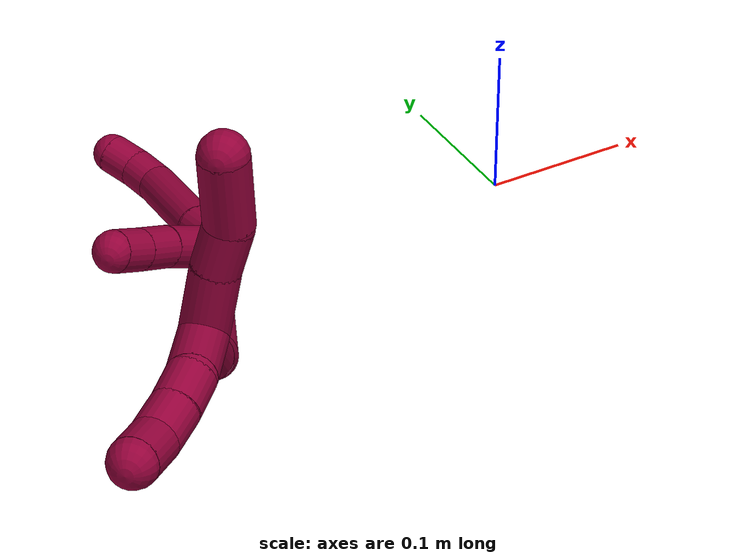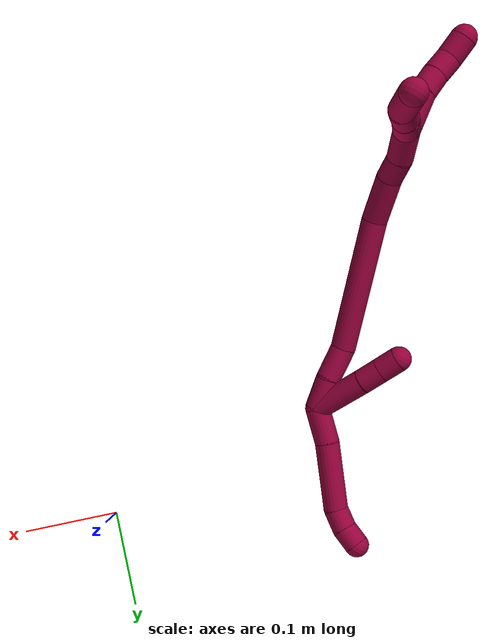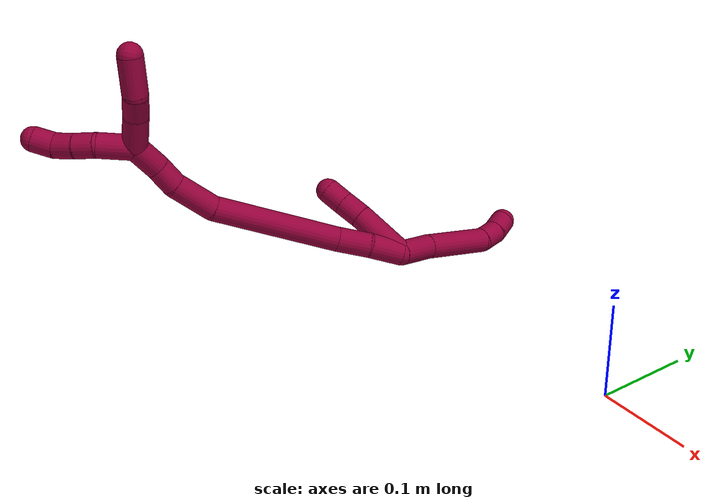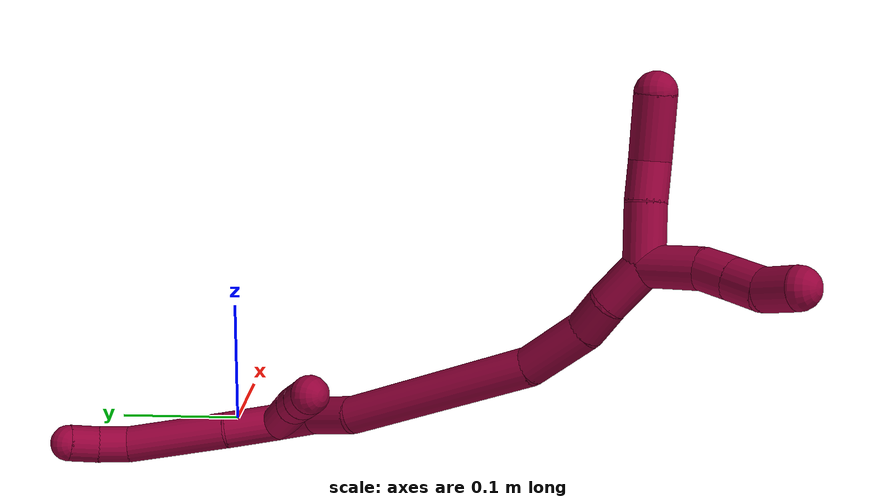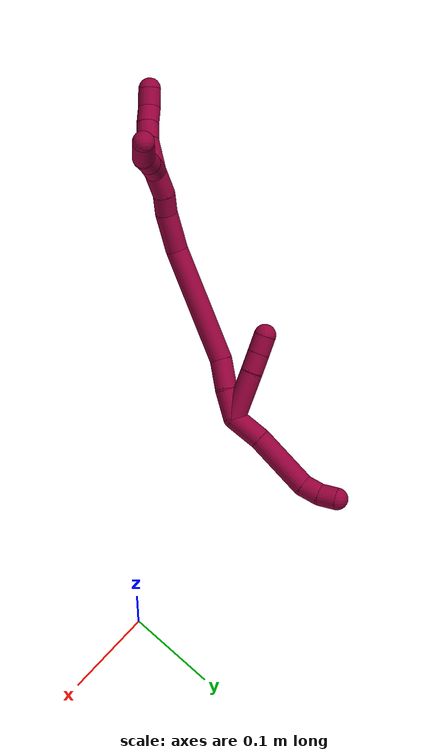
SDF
<sdf version="1.7">
 <world name="default">
  <model name="8">
   <static>0</static>
   <link name="8">
    <collision name="collision-cylinder-e_1_2_8">
     <pose>0.002901 0.012716 -0.013158 -2.37326 0.157228 -0.384918</pose>
     <geometry><cylinder><radius>0.0125</radius><length>0.037053</length></cylinder></geometry>
     <surface>
      <friction><ode><mu>1.16</mu><mu2>1.16</mu2><slip1>0</slip1><slip2>0</slip2></ode></friction>
      <contact><ode><kp>1e+06</kp><kd>1</kd><max_vel>0</max_vel><min_depth>0.001</min_depth></ode></contact>
     </surface>
    </collision>
    <visual name="visual-cylinder-e_1_2_8">
     <pose>0.002901 0.012716 -0.013158 -2.37326 0.157228 -0.384918</pose>
     <geometry><cylinder><radius>0.0125</radius><length>0.037053</length></cylinder></geometry>
     <material><ambient>0.584314 0 0.227451 1</ambient></material>
    </visual>
    <collision name="collision-cylinder-e_2_8_9">
     <pose>0.009753 0.046269 -0.054654 -2.50758 0.111859 -0.338061</pose>
     <geometry><cylinder><radius>0.0125</radius><length>0.070791</length></cylinder></geometry>
     <surface>
      <friction><ode><mu>1.16</mu><mu2>1.16</mu2><slip1>0</slip1><slip2>0</slip2></ode></friction>
      <contact><ode><kp>1e+06</kp><kd>1</kd><max_vel>0</max_vel><min_depth>0.001</min_depth></ode></contact>
     </surface>
    </collision>
    <visual name="visual-cylinder-e_2_8_9">
     <pose>0.009753 0.046269 -0.054654 -2.50758 0.111859 -0.338061</pose>
     <geometry><cylinder><radius>0.0125</radius><length>0.070791</length></cylinder></geometry>
     <material><ambient>0.584314 0 0.227451 1</ambient></material>
    </visual>
    <collision name="collision-cylinder-e_3_9_10">
     <pose>0.017588 0.07495 -0.089454 -2.25983 0.365024 -0.745703</pose>
     <geometry><cylinder><radius>0.0125</radius><length>0.02176</length></cylinder></geometry>
     <surface>
      <friction><ode><mu>1.16</mu><mu2>1.16</mu2><slip1>0</slip1><slip2>0</slip2></ode></friction>
      <contact><ode><kp>1e+06</kp><kd>1</kd><max_vel>0</max_vel><min_depth>0.001</min_depth></ode></contact>
     </surface>
    </collision>
    <visual name="visual-cylinder-e_3_9_10">
     <pose>0.017588 0.07495 -0.089454 -2.25983 0.365024 -0.745703</pose>
     <geometry><cylinder><radius>0.0125</radius><length>0.02176</length></cylinder></geometry>
     <material><ambient>0.584314 0 0.227451 1</ambient></material>
    </visual>
    <collision name="collision-cylinder-e_4_10_6">
     <pose>0.02643 0.090861 -0.099703 -2.00975 0.507701 -0.775505</pose>
     <geometry><cylinder><radius>0.0125</radius><length>0.020395</length></cylinder></geometry>
     <surface>
      <friction><ode><mu>1.16</mu><mu2>1.16</mu2><slip1>0</slip1><slip2>0</slip2></ode></friction>
      <contact><ode><kp>1e+06</kp><kd>1</kd><max_vel>0</max_vel><min_depth>0.001</min_depth></ode></contact>
     </surface>
    </collision>
    <visual name="visual-cylinder-e_4_10_6">
     <pose>0.02643 0.090861 -0.099703 -2.00975 0.507701 -0.775505</pose>
     <geometry><cylinder><radius>0.0125</radius><length>0.020395</length></cylinder></geometry>
     <material><ambient>0.584314 0 0.227451 1</ambient></material>
    </visual>
    <collision name="collision-cylinder-e_1_2_11">
     <pose>0.012984 0.008815 0.023349 -0.361007 0.479709 -0.089201</pose>
     <geometry><cylinder><radius>0.0125</radius><length>0.056266</length></cylinder></geometry>
     <surface>
      <friction><ode><mu>1.16</mu><mu2>1.16</mu2><slip1>0</slip1><slip2>0</slip2></ode></friction>
      <contact><ode><kp>1e+06</kp><kd>1</kd><max_vel>0</max_vel><min_depth>0.001</min_depth></ode></contact>
     </surface>
    </collision>
    <visual name="visual-cylinder-e_1_2_11">
     <pose>0.012984 0.008815 0.023349 -0.361007 0.479709 -0.089201</pose>
     <geometry><cylinder><radius>0.0125</radius><length>0.056266</length></cylinder></geometry>
     <material><ambient>0.584314 0 0.227451 1</ambient></material>
    </visual>
    <collision name="collision-cylinder-e_2_11_12">
     <pose>0.030431 0.021423 0.056446 -0.370999 0.403272 -0.076682</pose>
     <geometry><cylinder><radius>0.0125</radius><length>0.022743</length></cylinder></geometry>
     <surface>
      <friction><ode><mu>1.16</mu><mu2>1.16</mu2><slip1>0</slip1><slip2>0</slip2></ode></friction>
      <contact><ode><kp>1e+06</kp><kd>1</kd><max_vel>0</max_vel><min_depth>0.001</min_depth></ode></contact>
     </surface>
    </collision>
    <visual name="visual-cylinder-e_2_11_12">
     <pose>0.030431 0.021423 0.056446 -0.370999 0.403272 -0.076682</pose>
     <geometry><cylinder><radius>0.0125</radius><length>0.022743</length></cylinder></geometry>
     <material><ambient>0.584314 0 0.227451 1</ambient></material>
    </visual>
    <collision name="collision-cylinder-e_3_12_5">
     <pose>0.039252 0.028564 0.075134 -0.358403 0.428319 -0.078755</pose>
     <geometry><cylinder><radius>0.0125</radius><length>0.02099</length></cylinder></geometry>
     <surface>
      <friction><ode><mu>1.16</mu><mu2>1.16</mu2><slip1>0</slip1><slip2>0</slip2></ode></friction>
      <contact><ode><kp>1e+06</kp><kd>1</kd><max_vel>0</max_vel><min_depth>0.001</min_depth></ode></contact>
     </surface>
    </collision>
    <visual name="visual-cylinder-e_3_12_5">
     <pose>0.039252 0.028564 0.075134 -0.358403 0.428319 -0.078755</pose>
     <geometry><cylinder><radius>0.0125</radius><length>0.02099</length></cylinder></geometry>
     <material><ambient>0.584314 0 0.227451 1</ambient></material>
    </visual>
    <collision name="collision-cylinder-e_1_2_13">
     <pose>0.001786 -0.003425 0.01611 0.209502 0.108034 0.011369</pose>
     <geometry><cylinder><radius>0.0125</radius><length>0.033133</length></cylinder></geometry>
     <surface>
      <friction><ode><mu>1.16</mu><mu2>1.16</mu2><slip1>0</slip1><slip2>0</slip2></ode></friction>
      <contact><ode><kp>1e+06</kp><kd>1</kd><max_vel>0</max_vel><min_depth>0.001</min_depth></ode></contact>
     </surface>
    </collision>
    <visual name="visual-cylinder-e_1_2_13">
     <pose>0.001786 -0.003425 0.01611 0.209502 0.108034 0.011369</pose>
     <geometry><cylinder><radius>0.0125</radius><length>0.033133</length></cylinder></geometry>
     <material><ambient>0.584314 0 0.227451 1</ambient></material>
    </visual>
    <collision name="collision-cylinder-e_2_13_14">
     <pose>0.004128 -0.008212 0.049321 0.079458 0.032342 0.001286</pose>
     <geometry><cylinder><radius>0.0125</radius><length>0.034329</length></cylinder></geometry>
     <surface>
      <friction><ode><mu>1.16</mu><mu2>1.16</mu2><slip1>0</slip1><slip2>0</slip2></ode></friction>
      <contact><ode><kp>1e+06</kp><kd>1</kd><max_vel>0</max_vel><min_depth>0.001</min_depth></ode></contact>
     </surface>
    </collision>
    <visual name="visual-cylinder-e_2_13_14">
     <pose>0.004128 -0.008212 0.049321 0.079458 0.032342 0.001286</pose>
     <geometry><cylinder><radius>0.0125</radius><length>0.034329</length></cylinder></geometry>
     <material><ambient>0.584314 0 0.227451 1</ambient></material>
    </visual>
    <collision name="collision-cylinder-e_3_14_15">
     <pose>0.013903 -0.03134 0.128232 0.338591 0.139791 0.023933</pose>
     <geometry><cylinder><radius>0.0125</radius><length>0.132352</length></cylinder></geometry>
     <surface>
      <friction><ode><mu>1.16</mu><mu2>1.16</mu2><slip1>0</slip1><slip2>0</slip2></ode></friction>
      <contact><ode><kp>1e+06</kp><kd>1</kd><max_vel>0</max_vel><min_depth>0.001</min_depth></ode></contact>
     </surface>
    </collision>
    <visual name="visual-cylinder-e_3_14_15">
     <pose>0.013903 -0.03134 0.128232 0.338591 0.139791 0.023933</pose>
     <geometry><cylinder><radius>0.0125</radius><length>0.132352</length></cylinder></geometry>
     <material><ambient>0.584314 0 0.227451 1</ambient></material>
    </visual>
    <collision name="collision-cylinder-e_4_15_16">
     <pose>0.032534 -0.060027 0.209331 0.344462 0.430442 0.076019</pose>
     <geometry><cylinder><radius>0.0125</radius><length>0.045101</length></cylinder></geometry>
     <surface>
      <friction><ode><mu>1.16</mu><mu2>1.16</mu2><slip1>0</slip1><slip2>0</slip2></ode></friction>
      <contact><ode><kp>1e+06</kp><kd>1</kd><max_vel>0</max_vel><min_depth>0.001</min_depth></ode></contact>
     </surface>
    </collision>
    <visual name="visual-cylinder-e_4_15_16">
     <pose>0.032534 -0.060027 0.209331 0.344462 0.430442 0.076019</pose>
     <geometry><cylinder><radius>0.0125</radius><length>0.045101</length></cylinder></geometry>
     <material><ambient>0.584314 0 0.227451 1</ambient></material>
    </visual>
    <collision name="collision-cylinder-e_5_16_17">
     <pose>0.049623 -0.069612 0.237492 0.291739 0.692187 0.105857</pose>
     <geometry><cylinder><radius>0.0125</radius><length>0.024064</length></cylinder></geometry>
     <surface>
      <friction><ode><mu>1.16</mu><mu2>1.16</mu2><slip1>0</slip1><slip2>0</slip2></ode></friction>
      <contact><ode><kp>1e+06</kp><kd>1</kd><max_vel>0</max_vel><min_depth>0.001</min_depth></ode></contact>
     </surface>
    </collision>
    <visual name="visual-cylinder-e_5_16_17">
     <pose>0.049623 -0.069612 0.237492 0.291739 0.692187 0.105857</pose>
     <geometry><cylinder><radius>0.0125</radius><length>0.024064</length></cylinder></geometry>
     <material><ambient>0.584314 0 0.227451 1</ambient></material>
    </visual>
    <collision name="collision-cylinder-e_6_17_1">
     <pose>0.065977 -0.078861 0.257408 0.537652 0.59353 0.168093</pose>
     <geometry><cylinder><radius>0.0125</radius><length>0.031021</length></cylinder></geometry>
     <surface>
      <friction><ode><mu>1.16</mu><mu2>1.16</mu2><slip1>0</slip1><slip2>0</slip2></ode></friction>
      <contact><ode><kp>1e+06</kp><kd>1</kd><max_vel>0</max_vel><min_depth>0.001</min_depth></ode></contact>
     </surface>
    </collision>
    <visual name="visual-cylinder-e_6_17_1">
     <pose>0.065977 -0.078861 0.257408 0.537652 0.59353 0.168093</pose>
     <geometry><cylinder><radius>0.0125</radius><length>0.031021</length></cylinder></geometry>
     <material><ambient>0.584314 0 0.227451 1</ambient></material>
    </visual>
    <collision name="collision-cylinder-e_1_1_18">
     <pose>0.090919 -0.093429 0.268967 1.50634 1.11374 1.05671</pose>
     <geometry><cylinder><radius>0.0125</radius><length>0.036257</length></cylinder></geometry>
     <surface>
      <friction><ode><mu>1.16</mu><mu2>1.16</mu2><slip1>0</slip1><slip2>0</slip2></ode></friction>
      <contact><ode><kp>1e+06</kp><kd>1</kd><max_vel>0</max_vel><min_depth>0.001</min_depth></ode></contact>
     </surface>
    </collision>
    <visual name="visual-cylinder-e_1_1_18">
     <pose>0.090919 -0.093429 0.268967 1.50634 1.11374 1.05671</pose>
     <geometry><cylinder><radius>0.0125</radius><length>0.036257</length></cylinder></geometry>
     <material><ambient>0.584314 0 0.227451 1</ambient></material>
    </visual>
    <collision name="collision-cylinder-e_2_18_19">
     <pose>0.117526 -0.107903 0.27001 1.4896 1.00876 0.941501</pose>
     <geometry><cylinder><radius>0.0125</radius><length>0.024437</length></cylinder></geometry>
     <surface>
      <friction><ode><mu>1.16</mu><mu2>1.16</mu2><slip1>0</slip1><slip2>0</slip2></ode></friction>
      <contact><ode><kp>1e+06</kp><kd>1</kd><max_vel>0</max_vel><min_depth>0.001</min_depth></ode></contact>
     </surface>
    </collision>
    <visual name="visual-cylinder-e_2_18_19">
     <pose>0.117526 -0.107903 0.27001 1.4896 1.00876 0.941501</pose>
     <geometry><cylinder><radius>0.0125</radius><length>0.024437</length></cylinder></geometry>
     <material><ambient>0.584314 0 0.227451 1</ambient></material>
    </visual>
    <collision name="collision-cylinder-e_3_19_4">
     <pose>0.146353 -0.119528 0.274788 0.87958 1.22476 0.638448</pose>
     <geometry><cylinder><radius>0.0125</radius><length>0.039307</length></cylinder></geometry>
     <surface>
      <friction><ode><mu>1.16</mu><mu2>1.16</mu2><slip1>0</slip1><slip2>0</slip2></ode></friction>
      <contact><ode><kp>1e+06</kp><kd>1</kd><max_vel>0</max_vel><min_depth>0.001</min_depth></ode></contact>
     </surface>
    </collision>
    <visual name="visual-cylinder-e_3_19_4">
     <pose>0.146353 -0.119528 0.274788 0.87958 1.22476 0.638448</pose>
     <geometry><cylinder><radius>0.0125</radius><length>0.039307</length></cylinder></geometry>
     <material><ambient>0.584314 0 0.227451 1</ambient></material>
    </visual>
    <collision name="collision-cylinder-e_1_1_20">
     <pose>0.072756 -0.087046 0.286394 0.088935 -0.104839 -0.004669</pose>
     <geometry><cylinder><radius>0.0125</radius><length>0.036226</length></cylinder></geometry>
     <surface>
      <friction><ode><mu>1.16</mu><mu2>1.16</mu2><slip1>0</slip1><slip2>0</slip2></ode></friction>
      <contact><ode><kp>1e+06</kp><kd>1</kd><max_vel>0</max_vel><min_depth>0.001</min_depth></ode></contact>
     </surface>
    </collision>
    <visual name="visual-cylinder-e_1_1_20">
     <pose>0.072756 -0.087046 0.286394 0.088935 -0.104839 -0.004669</pose>
     <geometry><cylinder><radius>0.0125</radius><length>0.036226</length></cylinder></geometry>
     <material><ambient>0.584314 0 0.227451 1</ambient></material>
    </visual>
    <collision name="collision-cylinder-e_2_20_21">
     <pose>0.068353 -0.086834 0.314318 -0.1795 -0.242369 0.021918</pose>
     <geometry><cylinder><radius>0.0125</radius><length>0.020901</length></cylinder></geometry>
     <surface>
      <friction><ode><mu>1.16</mu><mu2>1.16</mu2><slip1>0</slip1><slip2>0</slip2></ode></friction>
      <contact><ode><kp>1e+06</kp><kd>1</kd><max_vel>0</max_vel><min_depth>0.001</min_depth></ode></contact>
     </surface>
    </collision>
    <visual name="visual-cylinder-e_2_20_21">
     <pose>0.068353 -0.086834 0.314318 -0.1795 -0.242369 0.021918</pose>
     <geometry><cylinder><radius>0.0125</radius><length>0.020901</length></cylinder></geometry>
     <material><ambient>0.584314 0 0.227451 1</ambient></material>
    </visual>
    <collision name="collision-cylinder-e_3_21_22">
     <pose>0.063796 -0.082381 0.334261 -0.25926 -0.196199 0.025658</pose>
     <geometry><cylinder><radius>0.0125</radius><length>0.021013</length></cylinder></geometry>
     <surface>
      <friction><ode><mu>1.16</mu><mu2>1.16</mu2><slip1>0</slip1><slip2>0</slip2></ode></friction>
      <contact><ode><kp>1e+06</kp><kd>1</kd><max_vel>0</max_vel><min_depth>0.001</min_depth></ode></contact>
     </surface>
    </collision>
    <visual name="visual-cylinder-e_3_21_22">
     <pose>0.063796 -0.082381 0.334261 -0.25926 -0.196199 0.025658</pose>
     <geometry><cylinder><radius>0.0125</radius><length>0.021013</length></cylinder></geometry>
     <material><ambient>0.584314 0 0.227451 1</ambient></material>
    </visual>
    <collision name="collision-cylinder-e_4_22_3">
     <pose>0.062774 -0.07863 0.355046 -0.102161 0.093993 -0.004809</pose>
     <geometry><cylinder><radius>0.0125</radius><length>0.02186</length></cylinder></geometry>
     <surface>
      <friction><ode><mu>1.16</mu><mu2>1.16</mu2><slip1>0</slip1><slip2>0</slip2></ode></friction>
      <contact><ode><kp>1e+06</kp><kd>1</kd><max_vel>0</max_vel><min_depth>0.001</min_depth></ode></contact>
     </surface>
    </collision>
    <visual name="visual-cylinder-e_4_22_3">
     <pose>0.062774 -0.07863 0.355046 -0.102161 0.093993 -0.004809</pose>
     <geometry><cylinder><radius>0.0125</radius><length>0.02186</length></cylinder></geometry>
     <material><ambient>0.584314 0 0.227451 1</ambient></material>
    </visual>
    <collision name="collision-sphere-3">
     <pose>0.0638 -0.07752 0.365872 0 -0 0</pose>
     <geometry><sphere><radius>0.0125</radius></sphere></geometry>
     <surface>
      <friction><ode><mu>1.16</mu><mu2>1.16</mu2><slip1>0</slip1><slip2>0</slip2></ode></friction>
      <contact><ode><kp>1e+06</kp><kd>1</kd><max_vel>0</max_vel><min_depth>0.001</min_depth></ode></contact>
     </surface>
    </collision>
    <visual name="visual-sphere-3">
     <pose>0.0638 -0.07752 0.365872 0 -0 0</pose>
     <geometry><sphere><radius>0.0125</radius></sphere></geometry>
     <material><ambient>0.584314 0 0.227451 1</ambient></material>
    </visual>
    <collision name="collision-sphere-22">
     <pose>0.061748 -0.079739 0.344221 0 -0 0</pose>
     <geometry><sphere><radius>0.0125</radius></sphere></geometry>
     <surface>
      <friction><ode><mu>1.16</mu><mu2>1.16</mu2><slip1>0</slip1><slip2>0</slip2></ode></friction>
      <contact><ode><kp>1e+06</kp><kd>1</kd><max_vel>0</max_vel><min_depth>0.001</min_depth></ode></contact>
     </surface>
    </collision>
    <visual name="visual-sphere-22">
     <pose>0.061748 -0.079739 0.344221 0 -0 0</pose>
     <geometry><sphere><radius>0.0125</radius></sphere></geometry>
     <material><ambient>0.584314 0 0.227451 1</ambient></material>
    </visual>
    <collision name="collision-sphere-21">
     <pose>0.065844 -0.085023 0.3243 0 -0 0</pose>
     <geometry><sphere><radius>0.0125</radius></sphere></geometry>
     <surface>
      <friction><ode><mu>1.16</mu><mu2>1.16</mu2><slip1>0</slip1><slip2>0</slip2></ode></friction>
      <contact><ode><kp>1e+06</kp><kd>1</kd><max_vel>0</max_vel><min_depth>0.001</min_depth></ode></contact>
     </surface>
    </collision>
    <visual name="visual-sphere-21">
     <pose>0.065844 -0.085023 0.3243 0 -0 0</pose>
     <geometry><sphere><radius>0.0125</radius></sphere></geometry>
     <material><ambient>0.584314 0 0.227451 1</ambient></material>
    </visual>
    <collision name="collision-sphere-20">
     <pose>0.070861 -0.088646 0.304336 0 -0 0</pose>
     <geometry><sphere><radius>0.0125</radius></sphere></geometry>
     <surface>
      <friction><ode><mu>1.16</mu><mu2>1.16</mu2><slip1>0</slip1><slip2>0</slip2></ode></friction>
      <contact><ode><kp>1e+06</kp><kd>1</kd><max_vel>0</max_vel><min_depth>0.001</min_depth></ode></contact>
     </surface>
    </collision>
    <visual name="visual-sphere-20">
     <pose>0.070861 -0.088646 0.304336 0 -0 0</pose>
     <geometry><sphere><radius>0.0125</radius></sphere></geometry>
     <material><ambient>0.584314 0 0.227451 1</ambient></material>
    </visual>
    <collision name="collision-sphere-4">
     <pose>0.164841 -0.124664 0.279037 0 -0 0</pose>
     <geometry><sphere><radius>0.0125</radius></sphere></geometry>
     <surface>
      <friction><ode><mu>1.16</mu><mu2>1.16</mu2><slip1>0</slip1><slip2>0</slip2></ode></friction>
      <contact><ode><kp>1e+06</kp><kd>1</kd><max_vel>0</max_vel><min_depth>0.001</min_depth></ode></contact>
     </surface>
    </collision>
    <visual name="visual-sphere-4">
     <pose>0.164841 -0.124664 0.279037 0 -0 0</pose>
     <geometry><sphere><radius>0.0125</radius></sphere></geometry>
     <material><ambient>0.584314 0 0.227451 1</ambient></material>
    </visual>
    <collision name="collision-sphere-11">
     <pose>0.025968 0.017631 0.046698 0 -0 0</pose>
     <geometry><sphere><radius>0.0125</radius></sphere></geometry>
     <surface>
      <friction><ode><mu>1.16</mu><mu2>1.16</mu2><slip1>0</slip1><slip2>0</slip2></ode></friction>
      <contact><ode><kp>1e+06</kp><kd>1</kd><max_vel>0</max_vel><min_depth>0.001</min_depth></ode></contact>
     </surface>
    </collision>
    <visual name="visual-sphere-11">
     <pose>0.025968 0.017631 0.046698 0 -0 0</pose>
     <geometry><sphere><radius>0.0125</radius></sphere></geometry>
     <material><ambient>0.584314 0 0.227451 1</ambient></material>
    </visual>
    <collision name="collision-sphere-6">
     <pose>0.031387 0.098928 -0.10349 0 -0 0</pose>
     <geometry><sphere><radius>0.0125</radius></sphere></geometry>
     <surface>
      <friction><ode><mu>1.16</mu><mu2>1.16</mu2><slip1>0</slip1><slip2>0</slip2></ode></friction>
      <contact><ode><kp>1e+06</kp><kd>1</kd><max_vel>0</max_vel><min_depth>0.001</min_depth></ode></contact>
     </surface>
    </collision>
    <visual name="visual-sphere-6">
     <pose>0.031387 0.098928 -0.10349 0 -0 0</pose>
     <geometry><sphere><radius>0.0125</radius></sphere></geometry>
     <material><ambient>0.584314 0 0.227451 1</ambient></material>
    </visual>
    <collision name="collision-sphere-10">
     <pose>0.021472 0.082795 -0.095916 0 -0 0</pose>
     <geometry><sphere><radius>0.0125</radius></sphere></geometry>
     <surface>
      <friction><ode><mu>1.16</mu><mu2>1.16</mu2><slip1>0</slip1><slip2>0</slip2></ode></friction>
      <contact><ode><kp>1e+06</kp><kd>1</kd><max_vel>0</max_vel><min_depth>0.001</min_depth></ode></contact>
     </surface>
    </collision>
    <visual name="visual-sphere-10">
     <pose>0.021472 0.082795 -0.095916 0 -0 0</pose>
     <geometry><sphere><radius>0.0125</radius></sphere></geometry>
     <material><ambient>0.584314 0 0.227451 1</ambient></material>
    </visual>
    <collision name="collision-sphere-9">
     <pose>0.013704 0.067105 -0.082992 0 -0 0</pose>
     <geometry><sphere><radius>0.0125</radius></sphere></geometry>
     <surface>
      <friction><ode><mu>1.16</mu><mu2>1.16</mu2><slip1>0</slip1><slip2>0</slip2></ode></friction>
      <contact><ode><kp>1e+06</kp><kd>1</kd><max_vel>0</max_vel><min_depth>0.001</min_depth></ode></contact>
     </surface>
    </collision>
    <visual name="visual-sphere-9">
     <pose>0.013704 0.067105 -0.082992 0 -0 0</pose>
     <geometry><sphere><radius>0.0125</radius></sphere></geometry>
     <material><ambient>0.584314 0 0.227451 1</ambient></material>
    </visual>
    <collision name="collision-sphere-2">
     <geometry><sphere><radius>0.0125</radius></sphere></geometry>
     <surface>
      <friction><ode><mu>1.16</mu><mu2>1.16</mu2><slip1>0</slip1><slip2>0</slip2></ode></friction>
      <contact><ode><kp>1e+06</kp><kd>1</kd><max_vel>0</max_vel><min_depth>0.001</min_depth></ode></contact>
     </surface>
    </collision>
    <visual name="visual-sphere-2">
     <geometry><sphere><radius>0.0125</radius></sphere></geometry>
     <material><ambient>0.584314 0 0.227451 1</ambient></material>
    </visual>
    <collision name="collision-sphere-19">
     <pose>0.127865 -0.114392 0.270538 0 -0 0</pose>
     <geometry><sphere><radius>0.0125</radius></sphere></geometry>
     <surface>
      <friction><ode><mu>1.16</mu><mu2>1.16</mu2><slip1>0</slip1><slip2>0</slip2></ode></friction>
      <contact><ode><kp>1e+06</kp><kd>1</kd><max_vel>0</max_vel><min_depth>0.001</min_depth></ode></contact>
     </surface>
    </collision>
    <visual name="visual-sphere-19">
     <pose>0.127865 -0.114392 0.270538 0 -0 0</pose>
     <geometry><sphere><radius>0.0125</radius></sphere></geometry>
     <material><ambient>0.584314 0 0.227451 1</ambient></material>
    </visual>
    <collision name="collision-sphere-8">
     <pose>0.005802 0.025432 -0.026315 0 -0 0</pose>
     <geometry><sphere><radius>0.0125</radius></sphere></geometry>
     <surface>
      <friction><ode><mu>1.16</mu><mu2>1.16</mu2><slip1>0</slip1><slip2>0</slip2></ode></friction>
      <contact><ode><kp>1e+06</kp><kd>1</kd><max_vel>0</max_vel><min_depth>0.001</min_depth></ode></contact>
     </surface>
    </collision>
    <visual name="visual-sphere-8">
     <pose>0.005802 0.025432 -0.026315 0 -0 0</pose>
     <geometry><sphere><radius>0.0125</radius></sphere></geometry>
     <material><ambient>0.584314 0 0.227451 1</ambient></material>
    </visual>
    <collision name="collision-sphere-12">
     <pose>0.034893 0.025215 0.066194 0 -0 0</pose>
     <geometry><sphere><radius>0.0125</radius></sphere></geometry>
     <surface>
      <friction><ode><mu>1.16</mu><mu2>1.16</mu2><slip1>0</slip1><slip2>0</slip2></ode></friction>
      <contact><ode><kp>1e+06</kp><kd>1</kd><max_vel>0</max_vel><min_depth>0.001</min_depth></ode></contact>
     </surface>
    </collision>
    <visual name="visual-sphere-12">
     <pose>0.034893 0.025215 0.066194 0 -0 0</pose>
     <geometry><sphere><radius>0.0125</radius></sphere></geometry>
     <material><ambient>0.584314 0 0.227451 1</ambient></material>
    </visual>
    <collision name="collision-sphere-5">
     <pose>0.043611 0.031913 0.084075 0 -0 0</pose>
     <geometry><sphere><radius>0.0125</radius></sphere></geometry>
     <surface>
      <friction><ode><mu>1.16</mu><mu2>1.16</mu2><slip1>0</slip1><slip2>0</slip2></ode></friction>
      <contact><ode><kp>1e+06</kp><kd>1</kd><max_vel>0</max_vel><min_depth>0.001</min_depth></ode></contact>
     </surface>
    </collision>
    <visual name="visual-sphere-5">
     <pose>0.043611 0.031913 0.084075 0 -0 0</pose>
     <geometry><sphere><radius>0.0125</radius></sphere></geometry>
     <material><ambient>0.584314 0 0.227451 1</ambient></material>
    </visual>
    <collision name="collision-sphere-13">
     <pose>0.003573 -0.006851 0.03222 0 -0 0</pose>
     <geometry><sphere><radius>0.0125</radius></sphere></geometry>
     <surface>
      <friction><ode><mu>1.16</mu><mu2>1.16</mu2><slip1>0</slip1><slip2>0</slip2></ode></friction>
      <contact><ode><kp>1e+06</kp><kd>1</kd><max_vel>0</max_vel><min_depth>0.001</min_depth></ode></contact>
     </surface>
    </collision>
    <visual name="visual-sphere-13">
     <pose>0.003573 -0.006851 0.03222 0 -0 0</pose>
     <geometry><sphere><radius>0.0125</radius></sphere></geometry>
     <material><ambient>0.584314 0 0.227451 1</ambient></material>
    </visual>
    <collision name="collision-sphere-14">
     <pose>0.004683 -0.009574 0.066422 0 -0 0</pose>
     <geometry><sphere><radius>0.0125</radius></sphere></geometry>
     <surface>
      <friction><ode><mu>1.16</mu><mu2>1.16</mu2><slip1>0</slip1><slip2>0</slip2></ode></friction>
      <contact><ode><kp>1e+06</kp><kd>1</kd><max_vel>0</max_vel><min_depth>0.001</min_depth></ode></contact>
     </surface>
    </collision>
    <visual name="visual-sphere-14">
     <pose>0.004683 -0.009574 0.066422 0 -0 0</pose>
     <geometry><sphere><radius>0.0125</radius></sphere></geometry>
     <material><ambient>0.584314 0 0.227451 1</ambient></material>
    </visual>
    <collision name="collision-sphere-15">
     <pose>0.023124 -0.053107 0.190042 0 -0 0</pose>
     <geometry><sphere><radius>0.0125</radius></sphere></geometry>
     <surface>
      <friction><ode><mu>1.16</mu><mu2>1.16</mu2><slip1>0</slip1><slip2>0</slip2></ode></friction>
      <contact><ode><kp>1e+06</kp><kd>1</kd><max_vel>0</max_vel><min_depth>0.001</min_depth></ode></contact>
     </surface>
    </collision>
    <visual name="visual-sphere-15">
     <pose>0.023124 -0.053107 0.190042 0 -0 0</pose>
     <geometry><sphere><radius>0.0125</radius></sphere></geometry>
     <material><ambient>0.584314 0 0.227451 1</ambient></material>
    </visual>
    <collision name="collision-sphere-16">
     <pose>0.041943 -0.066948 0.228621 0 -0 0</pose>
     <geometry><sphere><radius>0.0125</radius></sphere></geometry>
     <surface>
      <friction><ode><mu>1.16</mu><mu2>1.16</mu2><slip1>0</slip1><slip2>0</slip2></ode></friction>
      <contact><ode><kp>1e+06</kp><kd>1</kd><max_vel>0</max_vel><min_depth>0.001</min_depth></ode></contact>
     </surface>
    </collision>
    <visual name="visual-sphere-16">
     <pose>0.041943 -0.066948 0.228621 0 -0 0</pose>
     <geometry><sphere><radius>0.0125</radius></sphere></geometry>
     <material><ambient>0.584314 0 0.227451 1</ambient></material>
    </visual>
    <collision name="collision-sphere-17">
     <pose>0.057302 -0.072276 0.246364 0 -0 0</pose>
     <geometry><sphere><radius>0.0125</radius></sphere></geometry>
     <surface>
      <friction><ode><mu>1.16</mu><mu2>1.16</mu2><slip1>0</slip1><slip2>0</slip2></ode></friction>
      <contact><ode><kp>1e+06</kp><kd>1</kd><max_vel>0</max_vel><min_depth>0.001</min_depth></ode></contact>
     </surface>
    </collision>
    <visual name="visual-sphere-17">
     <pose>0.057302 -0.072276 0.246364 0 -0 0</pose>
     <geometry><sphere><radius>0.0125</radius></sphere></geometry>
     <material><ambient>0.584314 0 0.227451 1</ambient></material>
    </visual>
    <collision name="collision-sphere-1">
     <pose>0.074652 -0.085446 0.268452 0 -0 0</pose>
     <geometry><sphere><radius>0.0125</radius></sphere></geometry>
     <surface>
      <friction><ode><mu>1.16</mu><mu2>1.16</mu2><slip1>0</slip1><slip2>0</slip2></ode></friction>
      <contact><ode><kp>1e+06</kp><kd>1</kd><max_vel>0</max_vel><min_depth>0.001</min_depth></ode></contact>
     </surface>
    </collision>
    <visual name="visual-sphere-1">
     <pose>0.074652 -0.085446 0.268452 0 -0 0</pose>
     <geometry><sphere><radius>0.0125</radius></sphere></geometry>
     <material><ambient>0.584314 0 0.227451 1</ambient></material>
    </visual>
    <collision name="collision-sphere-18">
     <pose>0.107187 -0.101413 0.269482 0 -0 0</pose>
     <geometry><sphere><radius>0.0125</radius></sphere></geometry>
     <surface>
      <friction><ode><mu>1.16</mu><mu2>1.16</mu2><slip1>0</slip1><slip2>0</slip2></ode></friction>
      <contact><ode><kp>1e+06</kp><kd>1</kd><max_vel>0</max_vel><min_depth>0.001</min_depth></ode></contact>
     </surface>
    </collision>
    <visual name="visual-sphere-18">
     <pose>0.107187 -0.101413 0.269482 0 -0 0</pose>
     <geometry><sphere><radius>0.0125</radius></sphere></geometry>
     <material><ambient>0.584314 0 0.227451 1</ambient></material>
    </visual>
    <inertial>
     <pose>0.039218 -0.028932 0.129411 0 -0 0</pose>
     <mass>0.75</mass>
     <inertia><ixx>0.0003</ixx><ixy>0</ixy><ixz>0</ixz><iyy>0.00022</iyy><iyz>0</iyz><izz>1e-05</izz></inertia>
    </inertial>
   </link>
   <pose>-0.2309 -0.06616 0.073345 -1.05286 -1.24198 1.9273</pose>
  </model>
 </world>
</sdf>
